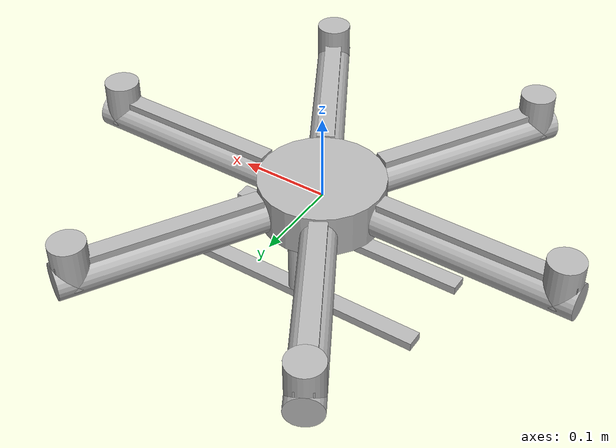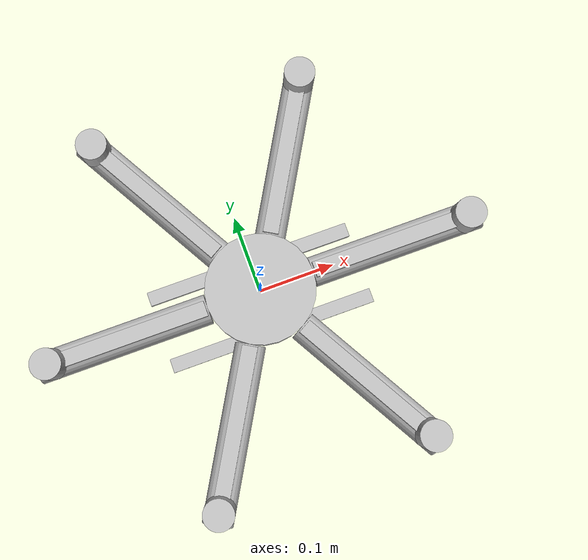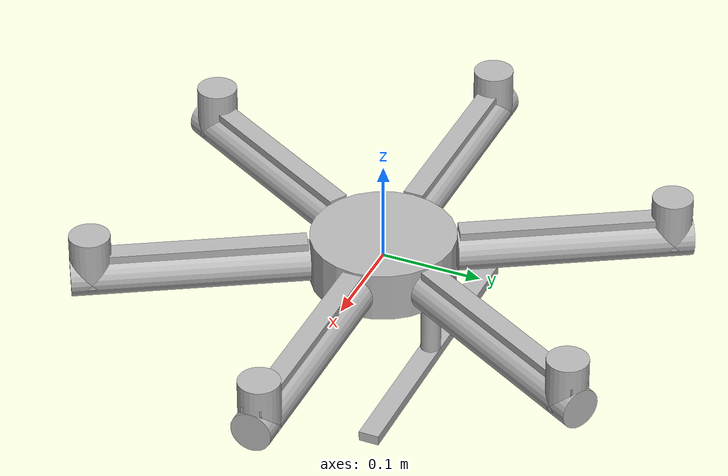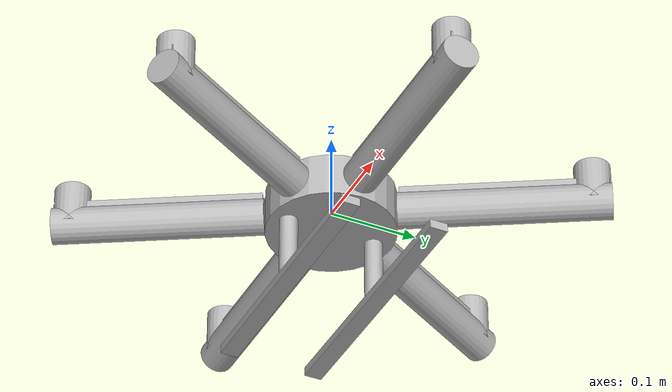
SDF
<sdf version="1.9">
  <model name="variable_tilt_hexacopter">

    <include>
      <uri>model://base</uri>
      <name>base</name>
    </include>

    <include>
      <uri>model://camera</uri>
      <name>camera</name>
      <pose>0 0 -0.025 0 0 0</pose>
    </include>

    <joint name="joint_camera" type="fixed">
      <parent>base::base_link</parent>
      <child>camera::camera_link</child>
      <pose>0 0 -0.025 0 0 0</pose>
    </joint>

    <!-- Arms -->
    <include>
      <uri>model://arm</uri>
      <name>arm_1</name>
      <pose>0.1855 0 0 0 0 0</pose>
    </include>

    <joint name="joint_arm_1" type="fixed">
      <parent>base::base_link</parent>
      <child>arm_1::arm_link</child>
      <pose>0.1855 0 0 0 0 0</pose>
    </joint>

    <include>
      <uri>model://arm</uri>
      <name>arm_2</name>
      <pose>0.09275 0.160643 0 0 0 1.047</pose>
    </include>

    <joint name="joint_arm_2" type="fixed">
      <parent>base::base_link</parent>
      <child>arm_2::arm_link</child>
      <pose>0.09275 0.160643 0 0 0 1.047</pose>
    </joint>

    <include>
      <uri>model://arm</uri>
      <name>arm_3</name>
      <pose>-0.09275 0.160643 0 0 0 2.094</pose>
    </include>

    <joint name="joint_arm_3" type="fixed">
      <parent>base::base_link</parent>
      <child>arm_3::arm_link</child>
      <pose>-0.09275 0.160643 0 0 0 2.094</pose>
    </joint>

    <include>
      <uri>model://arm</uri>
      <name>arm_4</name>
      <pose>-0.1855 0 0 0 0 3.141</pose>
    </include>

    <joint name="joint_arm_4" type="fixed">
      <parent>base::base_link</parent>
      <child>arm_4::arm_link</child>
      <pose>-0.1855 0 0 0 0 3.141</pose>
    </joint>

    <include>
      <uri>model://arm</uri>
      <name>arm_5</name>
      <pose>-0.09275 -0.160643 0 0 0 -2.095</pose>
    </include>

    <joint name="joint_arm_5" type="fixed">
      <parent>base::base_link</parent>
      <child>arm_5::arm_link</child>
      <pose>-0.09275 -0.160643 0 0 0 -2.095</pose>
    </joint>

    <include>
      <uri>model://arm</uri>
      <name>arm_6</name>
      <pose>0.09275 -0.160643 0 0 0 -1.048</pose>
    </include>

    <joint name="joint_arm_6" type="fixed">
      <parent>base::base_link</parent>
      <child>arm_6::arm_link</child>
      <pose>0.09275 -0.160643 0 0 0 -1.048</pose>
    </joint>

    <!-- Pluggins -->

    <!-- Pose Publisher Plugin -->
    <plugin filename="ignition-gazebo-pose-publisher-system" name="ignition::gazebo::systems::PosePublisher">
      <publish_link_pose>true</publish_link_pose>
      <publish_sensor_pose>true</publish_sensor_pose>
      <publish_collision_pose>false</publish_collision_pose>
      <publish_visual_pose>false</publish_visual_pose>
      <publish_nested_model_pose>true</publish_nested_model_pose>
      <publish_model_pose>false</publish_model_pose>
      <use_pose_vector_msg>true</use_pose_vector_msg>
      <static_publisher>true</static_publisher>
      <static_update_frequency>100</static_update_frequency>
    </plugin>

    <!-- Joint states plugin -->
    <plugin filename="ignition-gazebo-joint-state-publisher-system" name="ignition::gazebo::systems::JointStatePublisher">
      <robotNamespace>/model/variable_tilt_hexacopter</robotNamespace>
    </plugin>

    <!-- Odometry Plugin -->
    <plugin filename="ignition-gazebo-odometry-publisher-system" name="ignition::gazebo::systems::OdometryPublisher">
      <dimensions>3</dimensions>
      <odom_publish_frequency>100</odom_publish_frequency>
    </plugin>

    <!-- Rotor Plugins -->
    <plugin filename="libignition-gazebo-multicopter-motor-model-system" name="ignition::gazebo::systems::MulticopterMotorModel">
      <robotNamespace>/model/variable_tilt_hexacopter</robotNamespace>
      <jointName>arm_1::joint_prop</jointName>
      <linkName>arm_1::prop_link</linkName>
      <turningDirection>ccw</turningDirection>
      <timeConstantUp>0.0125</timeConstantUp>
      <timeConstantDown>0.025</timeConstantDown>
      <maxRotVelocity>1000.0</maxRotVelocity>
      <motorConstant>8.54858e-06</motorConstant>
      <momentConstant>0.016</momentConstant>
      <commandSubTopic>command/motor_speed</commandSubTopic>
      <motorNumber>0</motorNumber>
      <rotorDragCoefficient>8.06428e-05</rotorDragCoefficient>
      <rollingMomentCoefficient>1e-06</rollingMomentCoefficient>
      <motorSpeedPubTopic>motor_speed/0</motorSpeedPubTopic>
      <rotorVelocitySlowdownSim>10</rotorVelocitySlowdownSim>
      <motorType>velocity</motorType>
    </plugin>

    <plugin filename="libignition-gazebo-multicopter-motor-model-system" name="ignition::gazebo::systems::MulticopterMotorModel">
      <robotNamespace>/model/variable_tilt_hexacopter</robotNamespace>
      <jointName>arm_2::joint_prop</jointName>
      <linkName>arm_2::prop_link</linkName>
      <turningDirection>cw</turningDirection>
      <timeConstantUp>0.0125</timeConstantUp>
      <timeConstantDown>0.025</timeConstantDown>
      <maxRotVelocity>1000.0</maxRotVelocity>
      <motorConstant>8.54858e-06</motorConstant>
      <momentConstant>0.016</momentConstant>
      <commandSubTopic>command/motor_speed</commandSubTopic>
      <motorNumber>1</motorNumber>
      <rotorDragCoefficient>8.06428e-05</rotorDragCoefficient>
      <rollingMomentCoefficient>1e-06</rollingMomentCoefficient>
      <motorSpeedPubTopic>motor_speed/1</motorSpeedPubTopic>
      <rotorVelocitySlowdownSim>10</rotorVelocitySlowdownSim>
      <motorType>velocity</motorType>
    </plugin>

    <plugin filename="libignition-gazebo-multicopter-motor-model-system" name="ignition::gazebo::systems::MulticopterMotorModel">
      <robotNamespace>/model/variable_tilt_hexacopter</robotNamespace>
      <jointName>arm_3::joint_prop</jointName>
      <linkName>arm_3::prop_link</linkName>
      <turningDirection>ccw</turningDirection>
      <timeConstantUp>0.0125</timeConstantUp>
      <timeConstantDown>0.025</timeConstantDown>
      <maxRotVelocity>1000.0</maxRotVelocity>
      <motorConstant>8.54858e-06</motorConstant>
      <momentConstant>0.016</momentConstant>
      <commandSubTopic>command/motor_speed</commandSubTopic>
      <motorNumber>2</motorNumber>
      <rotorDragCoefficient>8.06428e-05</rotorDragCoefficient>
      <rollingMomentCoefficient>1e-06</rollingMomentCoefficient>
      <motorSpeedPubTopic>motor_speed/2</motorSpeedPubTopic>
      <rotorVelocitySlowdownSim>10</rotorVelocitySlowdownSim>
      <motorType>velocity</motorType>
    </plugin>

    <plugin filename="libignition-gazebo-multicopter-motor-model-system" name="ignition::gazebo::systems::MulticopterMotorModel">
      <robotNamespace>/model/variable_tilt_hexacopter</robotNamespace>
      <jointName>arm_4::joint_prop</jointName>
      <linkName>arm_4::prop_link</linkName>
      <turningDirection>cw</turningDirection>
      <timeConstantUp>0.0125</timeConstantUp>
      <timeConstantDown>0.025</timeConstantDown>
      <maxRotVelocity>1000.0</maxRotVelocity>
      <motorConstant>8.54858e-06</motorConstant>
      <momentConstant>0.016</momentConstant>
      <commandSubTopic>command/motor_speed</commandSubTopic>
      <motorNumber>3</motorNumber>
      <rotorDragCoefficient>8.06428e-05</rotorDragCoefficient>
      <rollingMomentCoefficient>1e-06</rollingMomentCoefficient>
      <motorSpeedPubTopic>motor_speed/3</motorSpeedPubTopic>
      <rotorVelocitySlowdownSim>10</rotorVelocitySlowdownSim>
      <motorType>velocity</motorType>
    </plugin>

    <plugin filename="libignition-gazebo-multicopter-motor-model-system" name="ignition::gazebo::systems::MulticopterMotorModel">
      <robotNamespace>/model/variable_tilt_hexacopter</robotNamespace>
      <jointName>arm_5::joint_prop</jointName>
      <linkName>arm_5::prop_link</linkName>
      <turningDirection>ccw</turningDirection>
      <timeConstantUp>0.0125</timeConstantUp>
      <timeConstantDown>0.025</timeConstantDown>
      <maxRotVelocity>1000.0</maxRotVelocity>
      <motorConstant>8.54858e-06</motorConstant>
      <momentConstant>0.016</momentConstant>
      <commandSubTopic>command/motor_speed</commandSubTopic>
      <motorNumber>4</motorNumber>
      <rotorDragCoefficient>8.06428e-05</rotorDragCoefficient>
      <rollingMomentCoefficient>1e-06</rollingMomentCoefficient>
      <motorSpeedPubTopic>motor_speed/4</motorSpeedPubTopic>
      <rotorVelocitySlowdownSim>10</rotorVelocitySlowdownSim>
      <motorType>velocity</motorType>
    </plugin>

    <plugin filename="libignition-gazebo-multicopter-motor-model-system" name="ignition::gazebo::systems::MulticopterMotorModel">
      <robotNamespace>/model/variable_tilt_hexacopter</robotNamespace>
      <jointName>arm_6::joint_prop</jointName>
      <linkName>arm_6::prop_link</linkName>
      <turningDirection>cw</turningDirection>
      <timeConstantUp>0.0125</timeConstantUp>
      <timeConstantDown>0.025</timeConstantDown>
      <maxRotVelocity>1000.0</maxRotVelocity>
      <motorConstant>8.54858e-06</motorConstant>
      <momentConstant>0.016</momentConstant>
      <commandSubTopic>command/motor_speed</commandSubTopic>
      <motorNumber>5</motorNumber>
      <rotorDragCoefficient>8.06428e-05</rotorDragCoefficient>
      <rollingMomentCoefficient>1e-06</rollingMomentCoefficient>
      <motorSpeedPubTopic>motor_speed/5</motorSpeedPubTopic>
      <rotorVelocitySlowdownSim>10</rotorVelocitySlowdownSim>
      <motorType>velocity</motorType>
    </plugin>

    <!-- Joint Position Control Plugins -->
    <plugin filename="libignition-gazebo-joint-position-controller-system" name="ignition::gazebo::systems::JointPositionController">
      <joint_name>joint_arm_1</joint_name>
      <topic>/model/variable_tilt_hexacopter/joint_arm_1/cmd_pos</topic>
    </plugin>

    <plugin filename="libignition-gazebo-joint-position-controller-system" name="ignition::gazebo::systems::JointPositionController">
      <joint_name>joint_arm_2</joint_name>
      <topic>/model/variable_tilt_hexacopter/joint_arm_2/cmd_pos</topic>
    </plugin>

    <plugin filename="libignition-gazebo-joint-position-controller-system" name="ignition::gazebo::systems::JointPositionController">
      <joint_name>joint_arm_3</joint_name>
      <topic>/model/variable_tilt_hexacopter/joint_arm_3/cmd_pos</topic>
    </plugin>

    <plugin filename="libignition-gazebo-joint-position-controller-system" name="ignition::gazebo::systems::JointPositionController">
      <joint_name>joint_arm_4</joint_name>
      <topic>/model/variable_tilt_hexacopter/joint_arm_4/cmd_pos</topic>
    </plugin>

    <plugin filename="libignition-gazebo-joint-position-controller-system" name="ignition::gazebo::systems::JointPositionController">
      <joint_name>joint_arm_5</joint_name>
      <topic>/model/variable_tilt_hexacopter/joint_arm_5/cmd_pos</topic>
    </plugin>

    <plugin filename="libignition-gazebo-joint-position-controller-system" name="ignition::gazebo::systems::JointPositionController">
      <joint_name>joint_arm_6</joint_name>
      <topic>/model/variable_tilt_hexacopter/joint_arm_6/cmd_pos</topic>
    </plugin>

  </model>
</sdf>

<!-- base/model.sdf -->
<sdf version="1.9">
  <model name="base">
    <link name="base_link">
      <pose>0 0 0 0 0 0</pose>

      <inertial>
        <mass>1.964</mass>
        <inertia>
          <ixx>0.00414594</ixx>
          <iyy>0.00314594</iyy>
          <izz>0.00534206</izz>
          <ixy>0</ixy>
          <ixz>0</ixz>
          <iyz>0</iyz>
        </inertia>
      </inertial>

      <!-- Main body -->
      <collision name="base_collision">
        <geometry>
          <cylinder>
            <length>0.05</length>
            <radius>0.071</radius>
          </cylinder>
        </geometry>
      </collision>

      <visual name="base_visual">
        <geometry>
          <cylinder>
            <length>0.05</length>
            <radius>0.071</radius>
          </cylinder>
        </geometry>
      </visual>

      <!-- Landing gear legs (left & right) -->
      <collision name="gear_leg_left">
        <pose>0 0.05 -0.05 0 0 0</pose>
        <geometry>
          <cylinder>
            <length>0.1</length>
            <radius>0.01</radius>
          </cylinder>
        </geometry>
      </collision>

      <visual name="gear_leg_left_visual">
        <pose>0 0.05 -0.05 0 0 0</pose>
        <geometry>
          <cylinder>
            <length>0.1</length>
            <radius>0.01</radius>
          </cylinder>
        </geometry>
      </visual>

      <collision name="gear_leg_right">
        <pose>0 -0.05 -0.05 0 0 0</pose>
        <geometry>
          <cylinder>
            <length>0.1</length>
            <radius>0.01</radius>
          </cylinder>
        </geometry>
      </collision>

      <visual name="gear_leg_right_visual">
        <pose>0 -0.05 -0.05 0 0 0</pose>
        <geometry>
          <cylinder>
            <length>0.1</length>
            <radius>0.01</radius>
          </cylinder>
        </geometry>
      </visual>

      <!-- Skids -->
      <collision name="gear_skid_left">
        <pose>0 0.05 -0.1 0 0 0</pose>
        <geometry>
          <box>
            <size>0.3 0.02 0.01</size>
          </box>
        </geometry>
      </collision>

      <visual name="gear_skid_left_visual">
        <pose>0 0.05 -0.1 0 0 0</pose>
        <geometry>
          <box>
            <size>0.3 0.02 0.01</size>
          </box>
        </geometry>
      </visual>

      <collision name="gear_skid_right">
        <pose>0 -0.05 -0.1 0 0 0</pose>
        <geometry>
          <box>
            <size>0.3 0.02 0.01</size>
          </box>
        </geometry>
      </collision>

      <visual name="gear_skid_right_visual">
        <pose>0 -0.05 -0.1 0 0 0</pose>
        <geometry>
          <box>
            <size>0.3 0.02 0.01</size>
          </box>
        </geometry>
      </visual>

      <!-- IMU Sensor -->
      <sensor name="onboard_imu_sensor" type="imu">
        <always_on>true</always_on>
        <update_rate>100.0</update_rate>
        <pose>0 0 0 0 0 0</pose>
        <topic>/model/variable_tilt_hexacopter/imu</topic>
        <imu>
          <angular_velocity>
            <x>
              <noise type="gaussian">
                <mean>0</mean>
                <stddev>0.009</stddev>
                <bias_mean>0.00075</bias_mean>
                <bias_stddev>0.005</bias_stddev>
                <dynamic_bias_stddev>0.00002</dynamic_bias_stddev>
                <dynamic_bias_correlation_time>400.0</dynamic_bias_correlation_time>
                <precision>0.00025</precision>
              </noise>
            </x>
            <y>
              <noise type="gaussian">
                <mean>0</mean>
                <stddev>0.009</stddev>
                <bias_mean>0.00075</bias_mean>
                <bias_stddev>0.005</bias_stddev>
                <dynamic_bias_stddev>0.00002</dynamic_bias_stddev>
                <dynamic_bias_correlation_time>400.0</dynamic_bias_correlation_time>
                <precision>0.00025</precision>
              </noise>
            </y>
            <z>
              <noise type="gaussian">
                <mean>0</mean>
                <stddev>0.009</stddev>
                <bias_mean>0.00075</bias_mean>
                <bias_stddev>0.005</bias_stddev>
                <dynamic_bias_stddev>0.00002</dynamic_bias_stddev>
                <dynamic_bias_correlation_time>400.0</dynamic_bias_correlation_time>
                <precision>0.00025</precision>
              </noise>
            </z>
          </angular_velocity>

          <linear_acceleration>
            <x>
              <noise type="gaussian">
                <mean>0</mean>
                <stddev>0.021</stddev>
                <bias_mean>0.05</bias_mean>
                <bias_stddev>0.0075</bias_stddev>
                <dynamic_bias_stddev>0.000375</dynamic_bias_stddev>
                <dynamic_bias_correlation_time>175.0</dynamic_bias_correlation_time>
                <precision>0.005</precision>
              </noise>
            </x>
            <y>
              <noise type="gaussian">
                <mean>0</mean>
                <stddev>0.021</stddev>
                <bias_mean>0.05</bias_mean>
                <bias_stddev>0.0075</bias_stddev>
                <dynamic_bias_stddev>0.000375</dynamic_bias_stddev>
                <dynamic_bias_correlation_time>175.0</dynamic_bias_correlation_time>
                <precision>0.005</precision>
              </noise>
            </y>
            <z>
              <noise type="gaussian">
                <mean>0</mean>
                <stddev>0.021</stddev>
                <bias_mean>0.05</bias_mean>
                <bias_stddev>0.0075</bias_stddev>
                <dynamic_bias_stddev>0.000375</dynamic_bias_stddev>
                <dynamic_bias_correlation_time>175.0</dynamic_bias_correlation_time>
                <precision>0.005</precision>
              </noise>
            </z>
            </linear_acceleration>

            <orientation>
              <noise type="gaussian">
                <mean>0</mean>
                <stddev>0.001</stddev> <!-- Small noise on fused orientation -->
              </noise>
            </orientation>
        </imu>
        <plugin filename="ignition-gazebo-imu-system" name="ignition::gazebo::systems::Imu"/>
      </sensor>

    </link>
  </model>
</sdf>

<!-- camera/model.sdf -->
<sdf version='1.9'>
  <model name='camera'>
    <link name='camera_link'>
      <inertial>
        <mass>0.05</mass>
        <inertia><ixx>0.00004</ixx><iyy>0.00004</iyy><izz>0.00004</izz></inertia>
      </inertial>
      <sensor name="camera_sensor" type="camera">
        <pose>0 0 0 0 0 0</pose>
        <camera>
          <horizontal_fov>1.74</horizontal_fov>
          <image><width>1280</width><height>960</height></image>
          <clip><near>0.1</near><far>3000</far></clip>
        </camera>
        <always_on>true</always_on>
        <update_rate>30</update_rate>
        <visualize>true</visualize>
        <topic>/variable_tilt_hexacopter/camera</topic>
      </sensor>
    </link>
  </model>
</sdf>

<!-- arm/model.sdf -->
<sdf version="1.9">
  <model name="arm">
    <link name="arm_link">
      <pose>0 0 0 0 0 0</pose>
      <inertial>
        <pose>0.1074 0 0.0071 0 0 0</pose>
        <mass>0.248</mass>
        <inertia>
          <ixx>0.00085084</ixx>
          <iyy>0.00087355</iyy>
          <izz>0.00011721</izz>
          <ixy>0</ixy>
          <ixz>2.27e-05</ixz>
          <iyz>0</iyz>
        </inertia>
      </inertial>

      <collision name="arm_collision">
        <pose>0 0 0 0 1.5708 0</pose>
        <geometry>
          <cylinder>
            <length>0.229</length>
            <radius>0.02</radius>
          </cylinder>
        </geometry>
      </collision>

      <collision name="motor_collision">
        <pose>0.0945 0 0.02 0 0 0</pose>
        <geometry>
          <cylinder>
            <length>0.05</length>
            <radius>0.02</radius>
          </cylinder>
        </geometry>
      </collision>

      <visual name="arm_visual">
        <pose>0 0 0 0 1.5708 0</pose>
        <geometry>
          <cylinder>
            <length>0.229</length>
            <radius>0.02</radius>
          </cylinder>
        </geometry>
      </visual>

      <visual name="motor_visual">
        <pose>0.0945 0 0.02 0 0 0</pose>
        <geometry>
          <cylinder>
            <length>0.05</length>
            <radius>0.02</radius>
          </cylinder>
        </geometry>
      </visual>
    </link>

    <!-- Propeller link (separate for revolute joint) -->
    <link name="prop_link">
      <inertial>
        <pose>0 0 0.02 0 0 0</pose>
        <mass>0.024</mass>
        <inertia>
          <ixx>4.25e-06</ixx>
          <iyy>0.00010145</iyy>
          <izz>0.0001053</izz>
          <ixy>0</ixy>
          <ixz>0</ixz>
          <iyz>0</iyz>
        </inertia>
      </inertial>
      <collision name="prop_collision">
        <pose>0 0 0.02 0 0 0</pose>
        <geometry>
          <box>
            <size>0.225 0.02 0.01</size>
          </box>
        </geometry>
      </collision>
      <visual name="prop_visual">
        <pose>0 0 0.02 0 0 0</pose>
        <geometry>
          <box>
            <size>0.225 0.02 0.01</size>
          </box>
        </geometry>
      </visual>
    </link>

    <!-- Joint between arm and propeller -->
    <joint name="prop_joint" type="revolute">
      <parent>arm_link</parent>
      <child>prop_link</child>
      <pose>0.0945 0 0.02 0 0 0</pose>
      <axis>
        <xyz>0 0 1</xyz>
        <limit>
          <lower>-1e16</lower>
          <upper>1e16</upper>
        </limit>
        <dynamics>
          <spring_reference>0</spring_reference>
          <spring_stiffness>0</spring_stiffness>
        </dynamics>
      </axis>
    </joint>
  </model>
</sdf>
